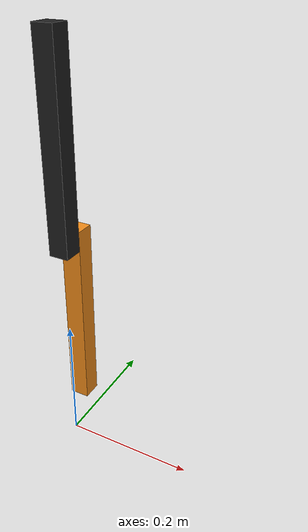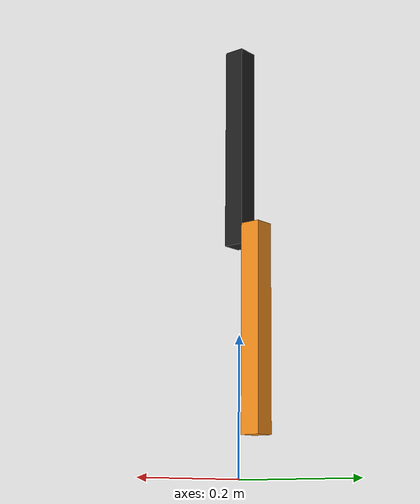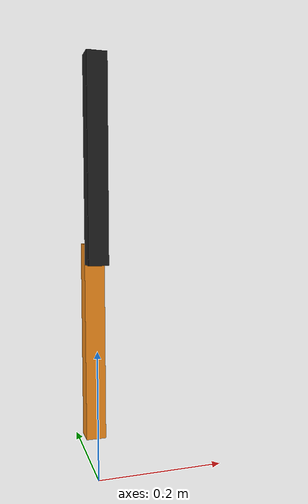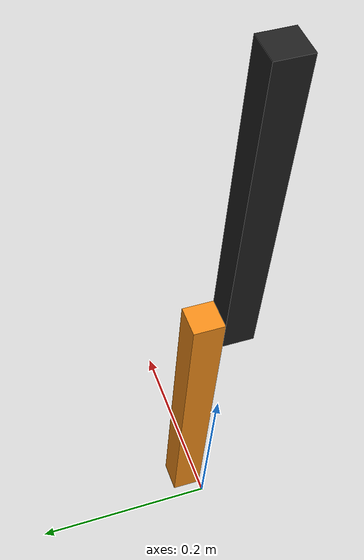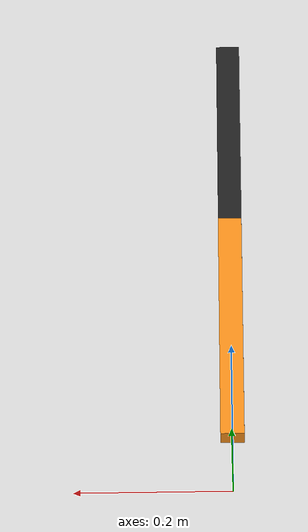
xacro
<?xml version="1.0"?>
<!-- Acrobot -->
<robot name="acrobot" xmlns:xacro="http://www.ros.org/wiki/xacro">

  <!-- Constants for robot dimensions -->
  <xacro:property name="PI" value="3.1415926535897931"/>
  <xacro:property name="mass" value="1" /> <!-- arbitrary value for mass -->
  <xacro:property name="width" value="0.03" /> <!-- Square dimensions (widthxwidth) of beams -->
  <xacro:property name="depth" value="0.03"/>
  <xacro:property name="height1" value="0.3" /> <!-- Link 1 -->
  <xacro:property name="height2" value="0.3" /> <!-- Link 2 -->
  <xacro:property name="mass2" value="0.171" /> <!-- Link 2 -->
  <xacro:property name="lc2" value="0.27948" />
  <xacro:property name="Ic2" value="0.0027273" />
  <xacro:property name="axel_offset1" value="0.0" /> <!-- Space btw top of beam and the each joint -->
  <xacro:property name="axel_offset2" value="0.03" /> <!-- Space btw top of beam and the each joint -->

  <!-- Import all Gazebo-customization elements, including Gazebo colors -->
  <xacro:include filename="$(find acrobot_description)/urdf/acrobot.gazebo" />
  <!-- Import Rviz colors -->
  <xacro:include filename="$(find acrobot_description)/urdf/materials.xacro" />

  <!-- Used for fixing robot to Gazebo 'base_link' -->
  <link name="world"/>

  <!-- Middle Link -->
  <link name="link1">
    <collision>
      <origin xyz="0 0 ${height1/2 - axel_offset1}" rpy="0 0 0"/>
      <geometry>
	      <box size="${width} ${width} ${height1}"/>
      </geometry>
    </collision>

    <visual>
      <origin xyz="0 0 ${height1/2 - axel_offset1}" rpy="0 0 0"/>
      <geometry>
	      <box size="${width} ${depth} ${height1}"/>
      </geometry>
      <material name="black"/>
    </visual>

    <inertial>
      <origin xyz="0 0 ${lc2}" rpy="0 0 0"/>
      <mass value="${mass2}"/>
      <inertia
        ixx="${mass / 12.0 * (width*width + height1*height1)}" ixy="0.0" ixz="0.0"
        iyy="${Ic2}" iyz="0.0"
        izz="${mass / 12.0 * (width*width + width*width)}"/>
    </inertial>
  </link>

  <link name="link2">
    <collision>
      <origin xyz="0 0 ${height2/2}" rpy="0 0 0"/>
      <geometry>
	      <box size="${width} ${depth} ${height2}"/>
      </geometry>
    </collision>

    <visual>
      <origin xyz="0 0 ${height2/2}" rpy="0 0 0"/>
      <geometry>
	      <box size="${width} ${depth} ${height2}"/>
      </geometry>
      <material name="orange"/>
    </visual>

    <inertial>
      <origin xyz="0 0 ${lc2}" rpy="0 0 0"/>
      <mass value="${mass2}"/>
      <inertia
        ixx="${mass / 12.0 * (width*width + height2*height2)}" ixy="0.0" ixz="0.0"
        iyy="${Ic2}" iyz="0.0"
        izz="${mass / 12.0 * (width*width + width*width)}"/>
    </inertial>
  </link>

  <joint name="joint1" type="continuous">
    <parent link="world"/>
    <child link="link1"/>
    <origin xyz="0 0 ${height1 + height2 + axel_offset2}" rpy="0 ${PI} 0"/>
    <axis xyz="0 1 0"/>
  </joint>

  <joint name="joint2" type="continuous">
    <parent link="link1"/>
    <child link="link2"/>
    <origin xyz="0 ${depth} ${height2 - axel_offset2*1}" rpy="0 0 0"/>
    <axis xyz="0 1 0"/>
    <dynamics damping="0.1"/>
  </joint>

  <transmission name="tran1" type="SimpleTransmission">
      <type>transmission_interface/SimpleTransmission</type>
      <actuator name="$motor1">
          <mechanicalReduction>1</mechanicalReduction>
      </actuator>
      <joint name="joint1">
          <hardwareInterface>hardware_interface/EffortJointInterface</hardwareInterface>
      </joint>
  </transmission>

</robot>
